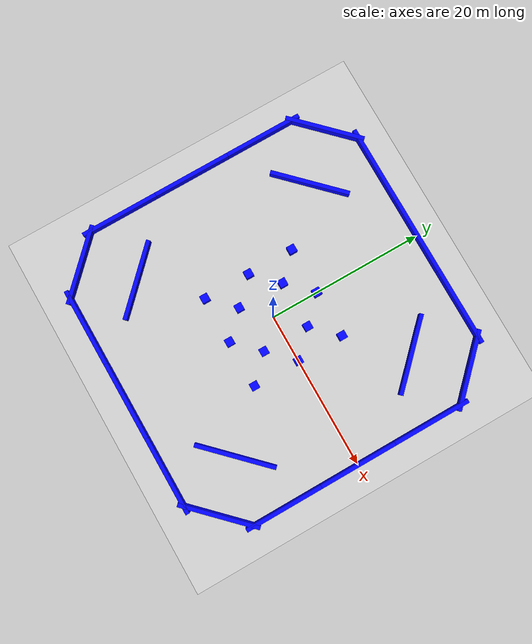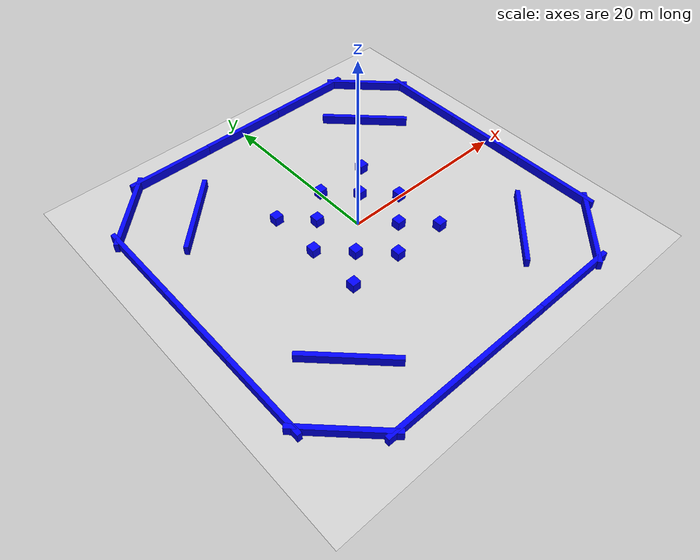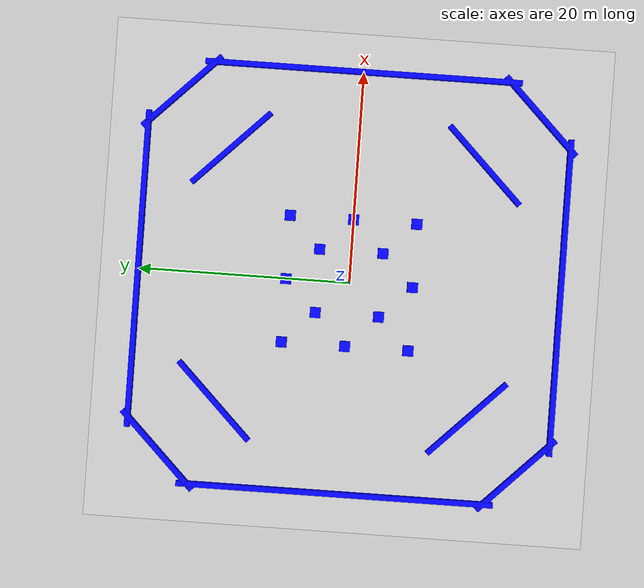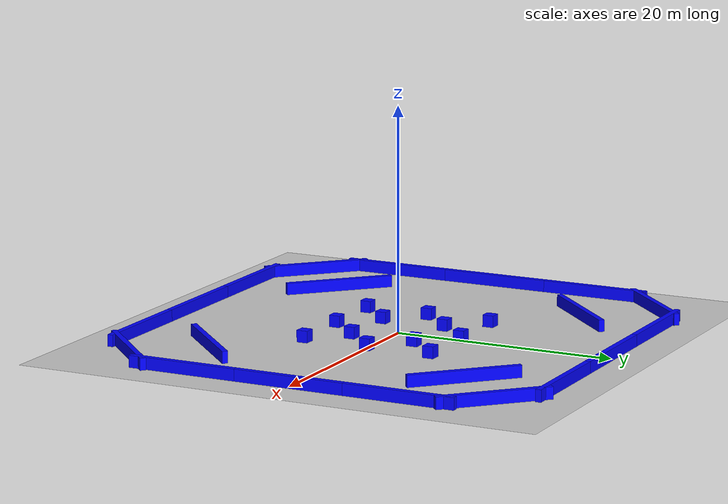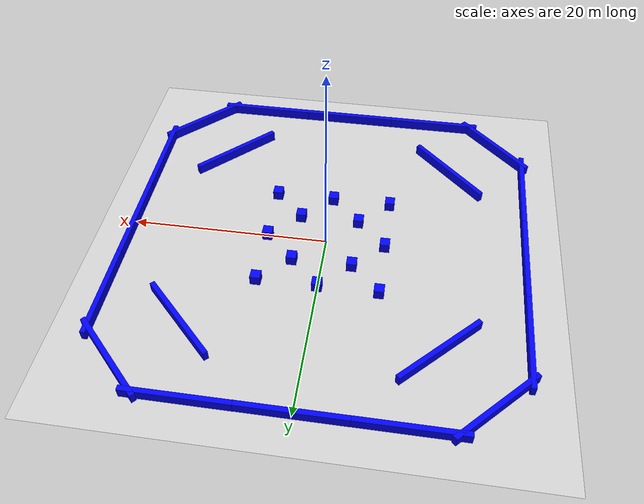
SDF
<sdf version="1.8">
 <world name="demo">
  <plugin filename="gz-sim-physics-system" name="gz::sim::systems::Physics"/>
  <plugin filename="gz-sim-sensors-system" name="gz::sim::systems::Sensors">
   <render_engine>ogre2</render_engine>
  </plugin>
  <plugin filename="gz-sim-scene-broadcaster-system" name="gz::sim::systems::SceneBroadcaster"/>
  <plugin filename="gz-sim-user-commands-system" name="gz::sim::systems::UserCommands"/>
  <plugin filename="BasicSystem" name="navigator_bot_gazebo::BasicSystem"/>
  <plugin filename="FullSystem" name="navigator_bot_gazebo::FullSystem"/>
  <light name="sun" type="directional">
   <pose>0 0 10 0 0 0</pose>
   <diffuse>0.8 0.8 0.8 1</diffuse>
   <specular>0.2 0.2 0.2 1</specular>
   <attenuation>
    <range>1000</range>
    <constant>0.9</constant>
    <linear>0.01</linear>
    <quadratic>0.001</quadratic>
   </attenuation>
   <direction>-0.5 0.1 -0.9</direction>
  </light>
  <model name="ground_plane">
   <static>true</static>
   <link name="link">
    <collision name="collision">
     <geometry><plane><normal>0 0 1</normal><size>100 100</size></plane></geometry>
    </collision>
    <visual name="visual">
     <geometry><plane><normal>0 0 1</normal><size>100 100</size></plane></geometry>
     <material>
      <ambient>0.8 0.8 0.8 1</ambient>
      <diffuse>0.8 0.8 0.8 1</diffuse>
      <specular>0.8 0.8 0.8 1</specular>
     </material>
    </visual>
   </link>
  </model>
  <include><uri>model://map.sdf</uri><name>map</name></include>
 </world>
</sdf>

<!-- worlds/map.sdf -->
<sdf version="1.8">
  <model name="map">
    <include>
      <uri>model://wall_model.sdf</uri>
      <name>backwall1</name>
      <pose>-20 -10 0 0 0 0</pose>
    </include>
    <include>
      <uri>model://wall_model.sdf</uri>
      <name>backwall2</name>
      <pose>-20 0 0 0 0 0</pose>
    </include>
    <include>
      <uri>model://wall_model.sdf</uri>
      <name>backwall3</name>
      <pose>-20 10 0 0 0 0</pose>
    </include>

    <include>
      <uri>model://wall_model.sdf</uri>
      <name>frontwall1</name>
      <pose>20 -10 0 0 0 0</pose>
    </include>
    <include>
      <uri>model://wall_model.sdf</uri>
      <name>frontwall2</name>
      <pose>20 0 0 0 0 0</pose>
    </include>
    <include>
      <uri>model://wall_model.sdf</uri>
      <name>frontwall3</name>
      <pose>20 10 0 0 0 0</pose>
    </include>

    <include>
      <uri>model://wall_model.sdf</uri>
      <name>rightwall1</name>
      <pose>-10 -20 0 0 0 1.57</pose>
    </include>
    <include>
      <uri>model://wall_model.sdf</uri>
      <name>rightwall2</name>
      <pose>0 -20 0 0 0 1.57</pose>
    </include>
    <include>
      <uri>model://wall_model.sdf</uri>
      <name>rightwall3</name>
      <pose>10 -20 0 0 0 1.57</pose>
    </include>

    <include>
      <uri>model://wall_model.sdf</uri>
      <name>leftwall1</name>
      <pose>-10 20 0 0 0 1.57</pose>
    </include>
    <include>
      <uri>model://wall_model.sdf</uri>
      <name>leftwall2</name>
      <pose>0 20 0 0 0 1.57</pose>
    </include>
    <include>
      <uri>model://wall_model.sdf</uri>
      <name>leftwall3</name>
      <pose>10 20 0 0 0 1.57</pose>
    </include>

    <include>
      <uri>model://wall_model.sdf</uri>
      <name>corner1</name>
      <pose>-17 -17 0 0 0 0.785</pose>
    </include>
    <include>
      <uri>model://wall_model.sdf</uri>
      <name>corner2</name>
      <pose>-17 17 0 0 0 -0.785</pose>
    </include>
    <include>
      <uri>model://wall_model.sdf</uri>
      <name>corner3</name>
      <pose>17 -17 0 0 0 -0.785</pose>
    </include>
    <include>
      <uri>model://wall_model.sdf</uri>
      <name>corner4</name>
      <pose>17 17 0 0 0 0.785</pose>
    </include>

    <include>
      <uri>model://wall_model.sdf</uri>
      <name>innercorner1</name>
      <pose>-12 -12 0 0 0 0.785</pose>
    </include>
    <include>
      <uri>model://wall_model.sdf</uri>
      <name>innercorner2</name>
      <pose>-12 12 0 0 0 -0.785</pose>
    </include>
    <include>
      <uri>model://wall_model.sdf</uri>
      <name>innercorner3</name>
      <pose>12 -12 0 0 0 -0.785</pose>
    </include>
    <include>
      <uri>model://wall_model.sdf</uri>
      <name>innercorner4</name>
      <pose>12 12 0 0 0 0.785</pose>
    </include>

    <include>
      <uri>model://block_model.sdf</uri>
      <name>block1</name>
      <pose>3 3 0 0 0 0</pose>
    </include>
    <include>
      <uri>model://block_model.sdf</uri>
      <name>block2</name>
      <pose>3 -3 0 0 0 0</pose>
    </include>
    <include>
      <uri>model://block_model.sdf</uri>
      <name>block3</name>
      <pose>-3 3 0 0 0 0</pose>
    </include>
    <include>
      <uri>model://block_model.sdf</uri>
      <name>block4</name>
      <pose>-3 -3 0 0 0 0</pose>
    </include>

    <include>
      <uri>model://block_model.sdf</uri>
      <name>block5</name>
      <pose>6 0 0 0 0 0</pose>
    </include>
    <include>
      <uri>model://block_model.sdf</uri>
      <name>block6</name>
      <pose>-6 0 0 0 0 0</pose>
    </include>
    <include>
      <uri>model://block_model.sdf</uri>
      <name>block7</name>
      <pose>0 6 0 0 0 0</pose>
    </include>
    <include>
      <uri>model://block_model.sdf</uri>
      <name>block8</name>
      <pose>0 -6 0 0 0 0</pose>
    </include>

    <include>
      <uri>model://block_model.sdf</uri>
      <name>block9</name>
      <pose>6 6 0 0 0 0</pose>
    </include>
    <include>
      <uri>model://block_model.sdf</uri>
      <name>block10</name>
      <pose>-6 6 0 0 0 0</pose>
    </include>
    <include>
      <uri>model://block_model.sdf</uri>
      <name>block11</name>
      <pose>6 -6 0 0 0 0</pose>
    </include>
    <include>
      <uri>model://block_model.sdf</uri>
      <name>block12</name>
      <pose>-6 -6 0 0 0 0</pose>
    </include>

  </model>
</sdf>

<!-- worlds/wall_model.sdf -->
<!-- Pose and Size must be specified when included -->
<sdf version="1.8">
  <model name="wall">
    <static>true</static>
    <link name="box">
      <visual name="visual">
        <geometry>
          <box>
            <size>0.5 10.0 2.0</size>
          </box>
        </geometry>
        <material>
          <ambient>0.0 0.0 1.0 1</ambient>
          <diffuse>0.0 0.0 1.0 1</diffuse>
          <specular>0.0 0.0 1.0 1</specular>
        </material>
      </visual>
      <collision name="collision">
        <geometry>
          <box>
            <size>0.5 10.0 2.0</size>
          </box>
        </geometry>
      </collision>
    </link>
  </model>
</sdf>

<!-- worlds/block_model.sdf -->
<!-- Pose and Size must be specified when included -->
<sdf version="1.8">
  <model name="block">
    <static>true</static>
    <link name="box">
      <visual name="visual">
        <geometry>
          <box>
            <size>1.0 1.0 2.0</size>
          </box>
        </geometry>
        <material>
          <ambient>0.0 0.0 1.0 1</ambient>
          <diffuse>0.0 0.0 1.0 1</diffuse>
          <specular>0.0 0.0 1.0 1</specular>
        </material>
      </visual>
      <collision name="collision">
        <geometry>
          <box>
            <size>1.0 1.0 2.0</size>
          </box>
        </geometry>
      </collision>
    </link>
  </model>
</sdf>
